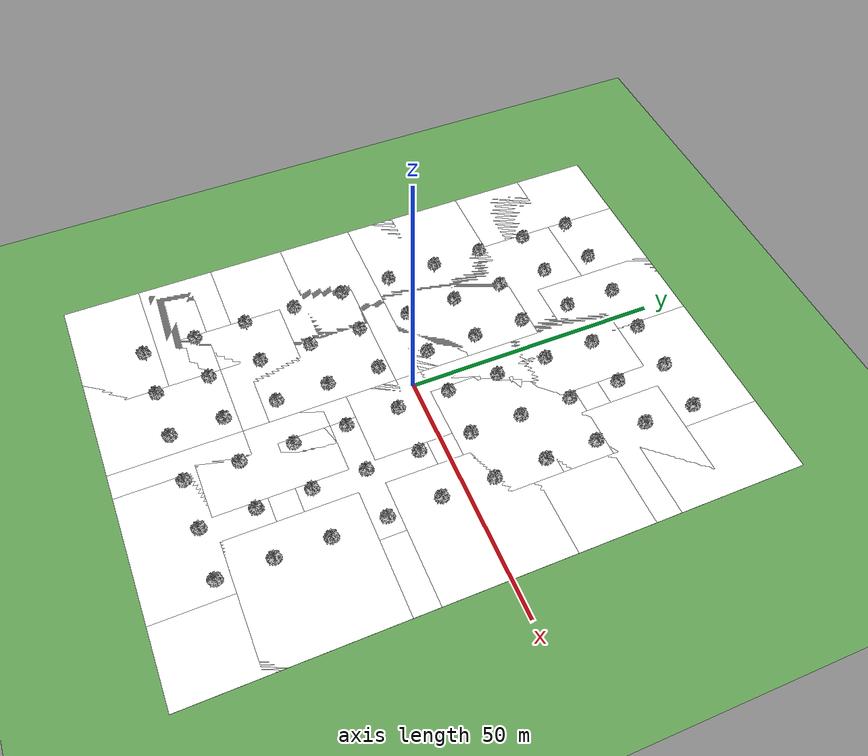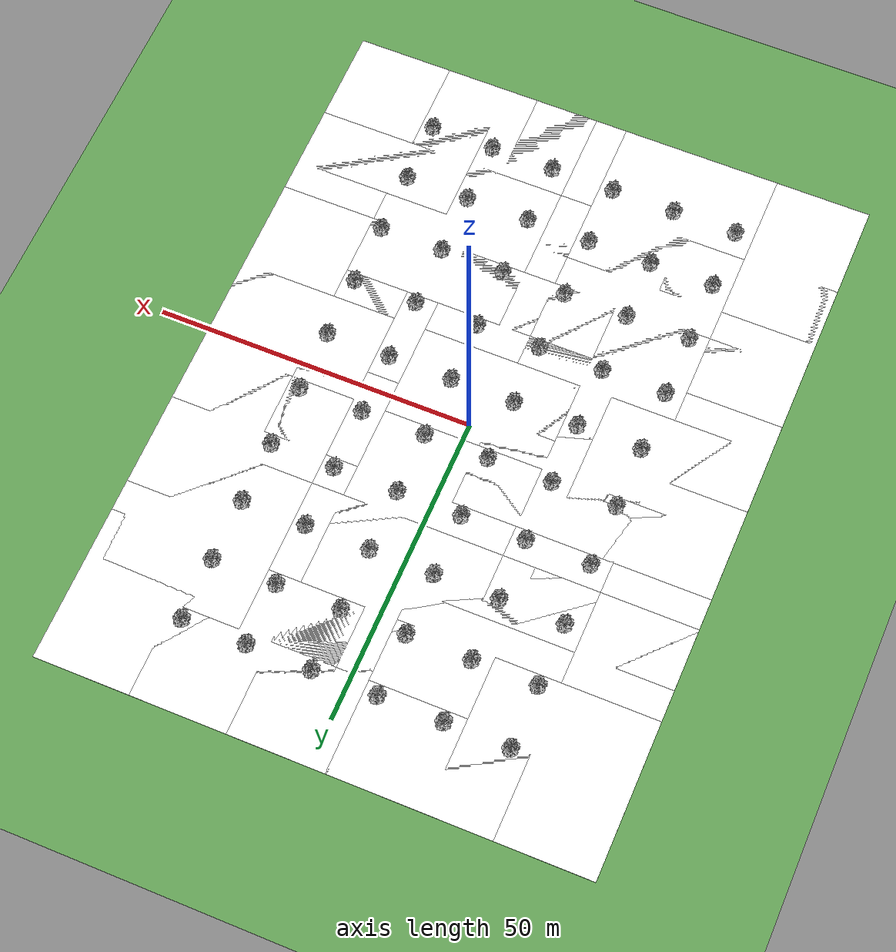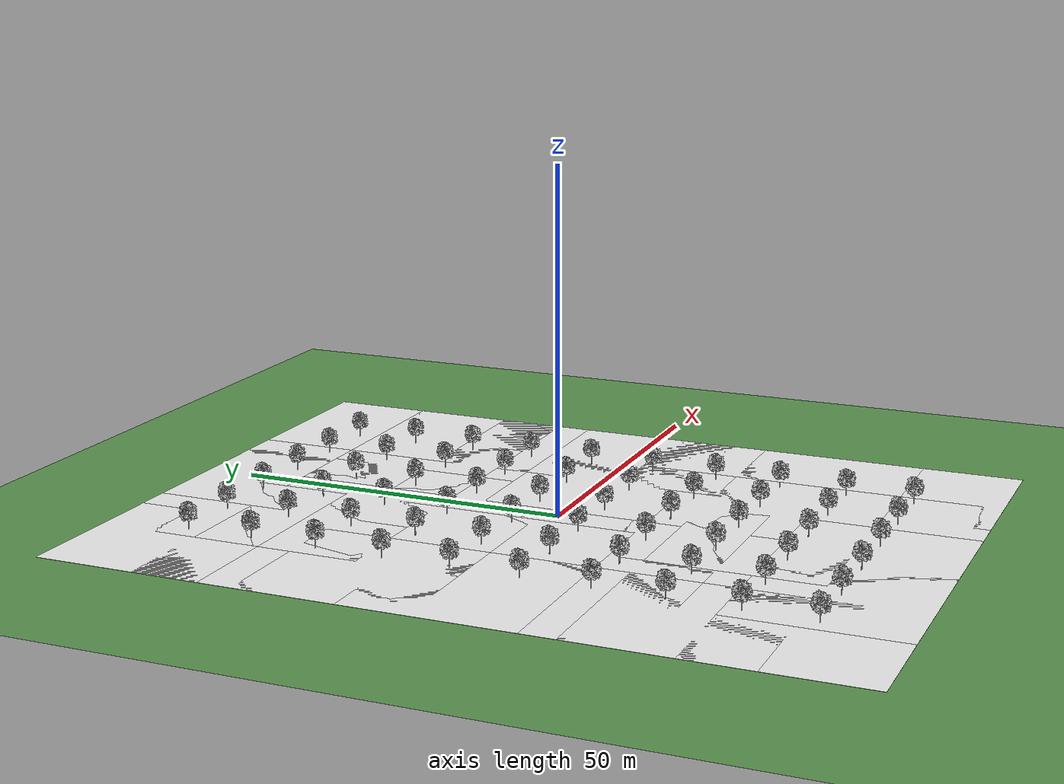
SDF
<?xml version="1.0" encoding="UTF-8"?>
<sdf version="1.9">
  <world name="apple_orchard_100x75">
    <physics type="ode">
      <max_step_size>0.004</max_step_size>
      <real_time_factor>1.0</real_time_factor>
      <real_time_update_rate>250</real_time_update_rate>
    </physics>
    <gravity>0 0 -9.8</gravity>
    <magnetic_field>6e-06 2.3e-05 -4.2e-05</magnetic_field>
    <atmosphere type="adiabatic"/>
    <scene>
      <grid>false</grid>
      <ambient>0.4 0.4 0.4 1</ambient>
      <background>0.7 0.7 0.7 1</background>
      <shadows>true</shadows>
    </scene>

    <model name="orchard_ground">
      <static>true</static>
      <pose>0 0 0 0 0 0</pose>
      <link name="ground_link">
        <collision name="ground_collision">
          <geometry>
            <plane>
              <normal>0 0 1</normal>
              <size>300 300</size>
            </plane>
          </geometry>
        </collision>
        <visual name="ground_visual">
          <transparency>0.990</transparency>
          <geometry>
            <plane>
              <normal>0 0 1</normal>
              <size>300 300</size>
            </plane>
          </geometry>
          <material>
            <ambient>0.32 0.55 0.28 0.15</ambient>
            <diffuse>0.38 0.62 0.33 0.15</diffuse>
            <specular>0.05 0.05 0.05 0.15</specular>
            <emissive>0 0 0 0</emissive>
          </material>
        </visual>
      </link>
    </model>

    <include>
      <uri>model://grasspatch_no_collision</uri>
      <name>grasspatch_0</name>
      <pose>-30 -45 0 0 0 0</pose>
    </include>
    <include>
      <uri>model://grasspatch_no_collision</uri>
      <name>grasspatch_1</name>
      <pose>-30 -30 0 0 0 0</pose>
    </include>
    <include>
      <uri>model://grasspatch_no_collision</uri>
      <name>grasspatch_2</name>
      <pose>-30 -15 0 0 0 0</pose>
    </include>
    <include>
      <uri>model://grasspatch_no_collision</uri>
      <name>grasspatch_3</name>
      <pose>-30 0 0 0 0 0</pose>
    </include>
    <include>
      <uri>model://grasspatch_no_collision</uri>
      <name>grasspatch_4</name>
      <pose>-30 15 0 0 0 0</pose>
    </include>
    <include>
      <uri>model://grasspatch_no_collision</uri>
      <name>grasspatch_5</name>
      <pose>-30 30 0 0 0 0</pose>
    </include>
    <include>
      <uri>model://grasspatch_no_collision</uri>
      <name>grasspatch_6</name>
      <pose>-30 45 0 0 0 0</pose>
    </include>
    <include>
      <uri>model://grasspatch_no_collision</uri>
      <name>grasspatch_7</name>
      <pose>-15 -45 0 0 0 0</pose>
    </include>
    <include>
      <uri>model://grasspatch_no_collision</uri>
      <name>grasspatch_8</name>
      <pose>-15 -30 0 0 0 0</pose>
    </include>
    <include>
      <uri>model://grasspatch_no_collision</uri>
      <name>grasspatch_9</name>
      <pose>-15 -15 0 0 0 0</pose>
    </include>
    <include>
      <uri>model://grasspatch_no_collision</uri>
      <name>grasspatch_10</name>
      <pose>-15 0 0 0 0 0</pose>
    </include>
    <include>
      <uri>model://grasspatch_no_collision</uri>
      <name>grasspatch_11</name>
      <pose>-15 15 0 0 0 0</pose>
    </include>
    <include>
      <uri>model://grasspatch_no_collision</uri>
      <name>grasspatch_12</name>
      <pose>-15 30 0 0 0 0</pose>
    </include>
    <include>
      <uri>model://grasspatch_no_collision</uri>
      <name>grasspatch_13</name>
      <pose>-15 45 0 0 0 0</pose>
    </include>
    <include>
      <uri>model://grasspatch_no_collision</uri>
      <name>grasspatch_14</name>
      <pose>0 -45 0 0 0 0</pose>
    </include>
    <include>
      <uri>model://grasspatch_no_collision</uri>
      <name>grasspatch_15</name>
      <pose>0 -30 0 0 0 0</pose>
    </include>
    <include>
      <uri>model://grasspatch_no_collision</uri>
      <name>grasspatch_16</name>
      <pose>0 -15 0 0 0 0</pose>
    </include>
    <include>
      <uri>model://grasspatch_no_collision</uri>
      <name>grasspatch_17</name>
      <pose>0 0 0 0 0 0</pose>
    </include>
    <include>
      <uri>model://grasspatch_no_collision</uri>
      <name>grasspatch_18</name>
      <pose>0 15 0 0 0 0</pose>
    </include>
    <include>
      <uri>model://grasspatch_no_collision</uri>
      <name>grasspatch_19</name>
      <pose>0 30 0 0 0 0</pose>
    </include>
    <include>
      <uri>model://grasspatch_no_collision</uri>
      <name>grasspatch_20</name>
      <pose>0 45 0 0 0 0</pose>
    </include>
    <include>
      <uri>model://grasspatch_no_collision</uri>
      <name>grasspatch_21</name>
      <pose>15 -45 0 0 0 0</pose>
    </include>
    <include>
      <uri>model://grasspatch_no_collision</uri>
      <name>grasspatch_22</name>
      <pose>15 -30 0 0 0 0</pose>
    </include>
    <include>
      <uri>model://grasspatch_no_collision</uri>
      <name>grasspatch_23</name>
      <pose>15 -15 0 0 0 0</pose>
    </include>
    <include>
      <uri>model://grasspatch_no_collision</uri>
      <name>grasspatch_24</name>
      <pose>15 0 0 0 0 0</pose>
    </include>
    <include>
      <uri>model://grasspatch_no_collision</uri>
      <name>grasspatch_25</name>
      <pose>15 15 0 0 0 0</pose>
    </include>
    <include>
      <uri>model://grasspatch_no_collision</uri>
      <name>grasspatch_26</name>
      <pose>15 30 0 0 0 0</pose>
    </include>
    <include>
      <uri>model://grasspatch_no_collision</uri>
      <name>grasspatch_27</name>
      <pose>15 45 0 0 0 0</pose>
    </include>
    <include>
      <uri>model://grasspatch_no_collision</uri>
      <name>grasspatch_28</name>
      <pose>30 -45 0 0 0 0</pose>
    </include>
    <include>
      <uri>model://grasspatch_no_collision</uri>
      <name>grasspatch_29</name>
      <pose>30 -30 0 0 0 0</pose>
    </include>
    <include>
      <uri>model://grasspatch_no_collision</uri>
      <name>grasspatch_30</name>
      <pose>30 -15 0 0 0 0</pose>
    </include>
    <include>
      <uri>model://grasspatch_no_collision</uri>
      <name>grasspatch_31</name>
      <pose>30 0 0 0 0 0</pose>
    </include>
    <include>
      <uri>model://grasspatch_no_collision</uri>
      <name>grasspatch_32</name>
      <pose>30 15 0 0 0 0</pose>
    </include>
    <include>
      <uri>model://grasspatch_no_collision</uri>
      <name>grasspatch_33</name>
      <pose>30 30 0 0 0 0</pose>
    </include>
    <include>
      <uri>model://grasspatch_no_collision</uri>
      <name>grasspatch_34</name>
      <pose>30 45 0 0 0 0</pose>
    </include>
    <include>
      <uri>model://appletree</uri>
      <name>AppleTree_0</name>
      <pose>-25 -45 0 0 0 0</pose>
    </include>
    <include>
      <uri>model://appletree</uri>
      <name>AppleTree_1</name>
      <pose>-25 -35 0 0 0 0</pose>
    </include>
    <include>
      <uri>model://appletree</uri>
      <name>AppleTree_2</name>
      <pose>-25 -25 0 0 0 0</pose>
    </include>
    <include>
      <uri>model://appletree</uri>
      <name>AppleTree_3</name>
      <pose>-25 -15 0 0 0 0</pose>
    </include>
    <include>
      <uri>model://appletree</uri>
      <name>AppleTree_4</name>
      <pose>-25 -5 0 0 0 0</pose>
    </include>
    <include>
      <uri>model://appletree</uri>
      <name>AppleTree_5</name>
      <pose>-25 5 0 0 0 0</pose>
    </include>
    <include>
      <uri>model://appletree</uri>
      <name>AppleTree_6</name>
      <pose>-25 15 0 0 0 0</pose>
    </include>
    <include>
      <uri>model://appletree</uri>
      <name>AppleTree_7</name>
      <pose>-25 25 0 0 0 0</pose>
    </include>
    <include>
      <uri>model://appletree</uri>
      <name>AppleTree_8</name>
      <pose>-25 35 0 0 0 0</pose>
    </include>
    <include>
      <uri>model://appletree</uri>
      <name>AppleTree_9</name>
      <pose>-25 45 0 0 0 0</pose>
    </include>
    <include>
      <uri>model://appletree</uri>
      <name>AppleTree_10</name>
      <pose>-15 -45 0 0 0 0</pose>
    </include>
    <include>
      <uri>model://appletree</uri>
      <name>AppleTree_11</name>
      <pose>-15 -35 0 0 0 0</pose>
    </include>
    <include>
      <uri>model://appletree</uri>
      <name>AppleTree_12</name>
      <pose>-15 -25 0 0 0 0</pose>
    </include>
    <include>
      <uri>model://appletree</uri>
      <name>AppleTree_13</name>
      <pose>-15 -15 0 0 0 0</pose>
    </include>
    <include>
      <uri>model://appletree</uri>
      <name>AppleTree_14</name>
      <pose>-15 -5 0 0 0 0</pose>
    </include>
    <include>
      <uri>model://appletree</uri>
      <name>AppleTree_15</name>
      <pose>-15 5 0 0 0 0</pose>
    </include>
    <include>
      <uri>model://appletree</uri>
      <name>AppleTree_16</name>
      <pose>-15 15 0 0 0 0</pose>
    </include>
    <include>
      <uri>model://appletree</uri>
      <name>AppleTree_17</name>
      <pose>-15 25 0 0 0 0</pose>
    </include>
    <include>
      <uri>model://appletree</uri>
      <name>AppleTree_18</name>
      <pose>-15 35 0 0 0 0</pose>
    </include>
    <include>
      <uri>model://appletree</uri>
      <name>AppleTree_19</name>
      <pose>-15 45 0 0 0 0</pose>
    </include>
    <include>
      <uri>model://appletree</uri>
      <name>AppleTree_20</name>
      <pose>-5 -45 0 0 0 0</pose>
    </include>
    <include>
      <uri>model://appletree</uri>
      <name>AppleTree_21</name>
      <pose>-5 -35 0 0 0 0</pose>
    </include>
    <include>
      <uri>model://appletree</uri>
      <name>AppleTree_22</name>
      <pose>-5 -25 0 0 0 0</pose>
    </include>
    <include>
      <uri>model://appletree</uri>
      <name>AppleTree_23</name>
      <pose>-5 -15 0 0 0 0</pose>
    </include>
    <include>
      <uri>model://appletree</uri>
      <name>AppleTree_24</name>
      <pose>-5 -5 0 0 0 0</pose>
    </include>
    <include>
      <uri>model://appletree</uri>
      <name>AppleTree_25</name>
      <pose>-5 5 0 0 0 0</pose>
    </include>
    <include>
      <uri>model://appletree</uri>
      <name>AppleTree_26</name>
      <pose>-5 15 0 0 0 0</pose>
    </include>
    <include>
      <uri>model://appletree</uri>
      <name>AppleTree_27</name>
      <pose>-5 25 0 0 0 0</pose>
    </include>
    <include>
      <uri>model://appletree</uri>
      <name>AppleTree_28</name>
      <pose>-5 35 0 0 0 0</pose>
    </include>
    <include>
      <uri>model://appletree</uri>
      <name>AppleTree_29</name>
      <pose>-5 45 0 0 0 0</pose>
    </include>
    <include>
      <uri>model://appletree</uri>
      <name>AppleTree_30</name>
      <pose>5 -45 0 0 0 0</pose>
    </include>
    <include>
      <uri>model://appletree</uri>
      <name>AppleTree_31</name>
      <pose>5 -35 0 0 0 0</pose>
    </include>
    <include>
      <uri>model://appletree</uri>
      <name>AppleTree_32</name>
      <pose>5 -25 0 0 0 0</pose>
    </include>
    <include>
      <uri>model://appletree</uri>
      <name>AppleTree_33</name>
      <pose>5 -15 0 0 0 0</pose>
    </include>
    <include>
      <uri>model://appletree</uri>
      <name>AppleTree_34</name>
      <pose>5 -5 0 0 0 0</pose>
    </include>
    <include>
      <uri>model://appletree</uri>
      <name>AppleTree_35</name>
      <pose>5 5 0 0 0 0</pose>
    </include>
    <include>
      <uri>model://appletree</uri>
      <name>AppleTree_36</name>
      <pose>5 15 0 0 0 0</pose>
    </include>
    <include>
      <uri>model://appletree</uri>
      <name>AppleTree_37</name>
      <pose>5 25 0 0 0 0</pose>
    </include>
    <include>
      <uri>model://appletree</uri>
      <name>AppleTree_38</name>
      <pose>5 35 0 0 0 0</pose>
    </include>
    <include>
      <uri>model://appletree</uri>
      <name>AppleTree_39</name>
      <pose>5 45 0 0 0 0</pose>
    </include>
    <include>
      <uri>model://appletree</uri>
      <name>AppleTree_40</name>
      <pose>15 -45 0 0 0 0</pose>
    </include>
    <include>
      <uri>model://appletree</uri>
      <name>AppleTree_41</name>
      <pose>15 -35 0 0 0 0</pose>
    </include>
    <include>
      <uri>model://appletree</uri>
      <name>AppleTree_42</name>
      <pose>15 -25 0 0 0 0</pose>
    </include>
    <include>
      <uri>model://appletree</uri>
      <name>AppleTree_43</name>
      <pose>15 -15 0 0 0 0</pose>
    </include>
    <include>
      <uri>model://appletree</uri>
      <name>AppleTree_44</name>
      <pose>15 -5 0 0 0 0</pose>
    </include>
    <include>
      <uri>model://appletree</uri>
      <name>AppleTree_45</name>
      <pose>15 5 0 0 0 0</pose>
    </include>
    <include>
      <uri>model://appletree</uri>
      <name>AppleTree_46</name>
      <pose>15 15 0 0 0 0</pose>
    </include>
    <include>
      <uri>model://appletree</uri>
      <name>AppleTree_47</name>
      <pose>15 25 0 0 0 0</pose>
    </include>
    <include>
      <uri>model://appletree</uri>
      <name>AppleTree_48</name>
      <pose>15 35 0 0 0 0</pose>
    </include>
    <include>
      <uri>model://appletree</uri>
      <name>AppleTree_49</name>
      <pose>15 45 0 0 0 0</pose>
    </include>
    <include>
      <uri>model://appletree</uri>
      <name>AppleTree_50</name>
      <pose>25 -45 0 0 0 0</pose>
    </include>
    <include>
      <uri>model://appletree</uri>
      <name>AppleTree_51</name>
      <pose>25 -35 0 0 0 0</pose>
    </include>
    <include>
      <uri>model://appletree</uri>
      <name>AppleTree_52</name>
      <pose>25 -25 0 0 0 0</pose>
    </include>
    <include>
      <uri>model://appletree</uri>
      <name>AppleTree_53</name>
      <pose>25 -15 0 0 0 0</pose>
    </include>
    <include>
      <uri>model://appletree</uri>
      <name>AppleTree_54</name>
      <pose>25 -5 0 0 0 0</pose>
    </include>
    <include>
      <uri>model://appletree</uri>
      <name>AppleTree_55</name>
      <pose>25 5 0 0 0 0</pose>
    </include>
    <include>
      <uri>model://appletree</uri>
      <name>AppleTree_56</name>
      <pose>25 15 0 0 0 0</pose>
    </include>
    <include>
      <uri>model://appletree</uri>
      <name>AppleTree_57</name>
      <pose>25 25 0 0 0 0</pose>
    </include>
    <include>
      <uri>model://appletree</uri>
      <name>AppleTree_58</name>
      <pose>25 35 0 0 0 0</pose>
    </include>
    <include>
      <uri>model://appletree</uri>
      <name>AppleTree_59</name>
      <pose>25 45 0 0 0 0</pose>
    </include>
    <light name="sunUTC" type="directional">
      <pose>0 0 500 0 -0 0</pose>
      <cast_shadows>true</cast_shadows>
      <intensity>1</intensity>
      <direction>0.001 0.625 -0.78</direction>
      <diffuse>0.904 0.904 0.904 1</diffuse>
      <specular>0.271 0.271 0.271 1</specular>
      <attenuation>
        <range>2000</range>
        <linear>0</linear>
        <constant>1</constant>
        <quadratic>0</quadratic>
      </attenuation>
      <spot>
        <inner_angle>0</inner_angle>
        <outer_angle>0</outer_angle>
        <falloff>0</falloff>
      </spot>
    </light>
    <spherical_coordinates>
      <surface_model>EARTH_WGS84</surface_model>
      <world_frame_orientation>ENU</world_frame_orientation>
      <latitude_deg>59.36818431847906</latitude_deg>
      <longitude_deg>10.444830999411774</longitude_deg>
      <elevation>0</elevation>
    </spherical_coordinates>
  </world>
</sdf>

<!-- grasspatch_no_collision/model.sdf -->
<sdf version="1.4">
    <model name="grasspatch_no_collision">
        <static>true</static>
        <link name="link">

        <collision name="ground_collision">
            <pose>0 0 0 0 0 0</pose>
            <geometry>
            <plane>
                <normal>0 0 1</normal>
                <size>25 25</size>
            </plane>
            </geometry>
            <surface>
            <contact>
                <collide_bitmask>0xFFFF</collide_bitmask>
            </contact>
            <friction>
                <ode>
                <mu>1.0</mu>
                <mu2>1.0</mu2>
                </ode>
            </friction>
            </surface>
        </collision>

            <visual name="visual_s10">
                <pose>0 0 0 0 0 0</pose>
                <cast_shadows>false</cast_shadows>
                <geometry>
                    <plane>
                        <normal>0 0 1</normal>
                        <size>25 25</size>
                    </plane>
                </geometry>
                <material>
                    <diffuse>1.0 1.0 1.0</diffuse>
                    <specular>1.0 1.0 1.0</specular>
                    <pbr>
                        <metal>
                            <albedo_map>materials/textures/grass_dry.png</albedo_map>
                            <normal_map>materials/textures/grass_dry.png</normal_map>
                        </metal>
                    </pbr>
                </material>
            </visual>
        </link>
    </model>
</sdf>

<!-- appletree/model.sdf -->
<sdf version="1.9">
  <model name="appletree">
    <static>true</static>
    <link name="link">

      <!-- Use the exact same mesh for collisions! -->
      <collision name="collision">
        <!-- Exact same pose as the visual -->
        <pose>0 0 0 0 0 0</pose>
        <geometry>
          <mesh>
            <uri>model://appletree/meshes/appletree.obj</uri>
            <scale>8 8 8</scale>
          </mesh>
        </geometry>
      </collision>

      <!-- The visual mesh -->
      <visual name="visual">
        <pose>0 0 0 0 0 0</pose>
        <geometry>
          <mesh>
            <uri>model://appletree/meshes/appletree.obj</uri>
            <scale>8 8 8</scale>
          </mesh>
        </geometry>
      </visual>

    </link>
  </model>
</sdf>
